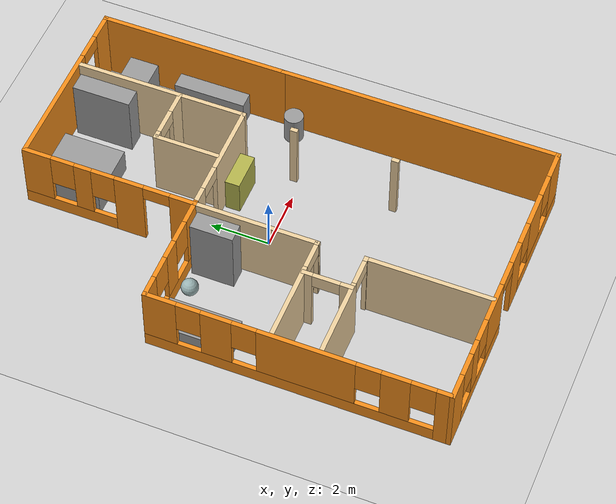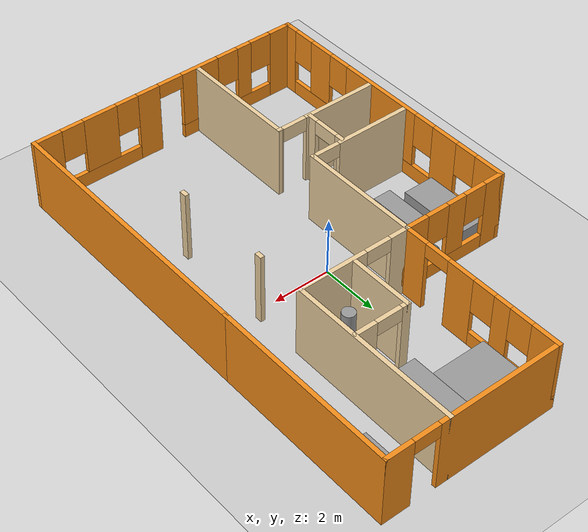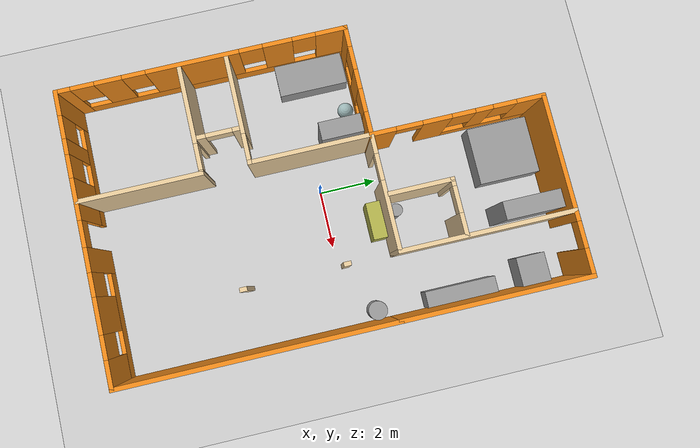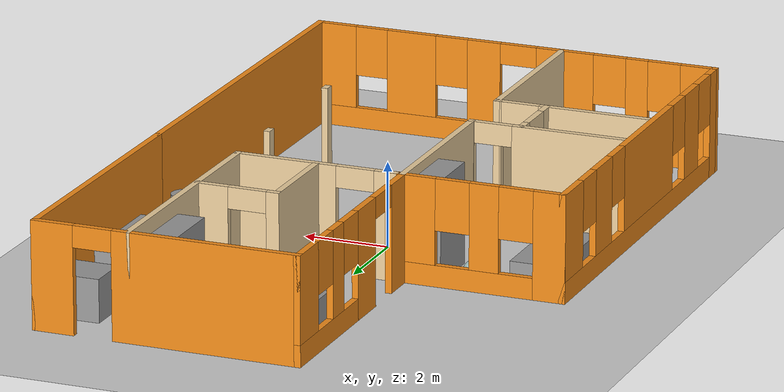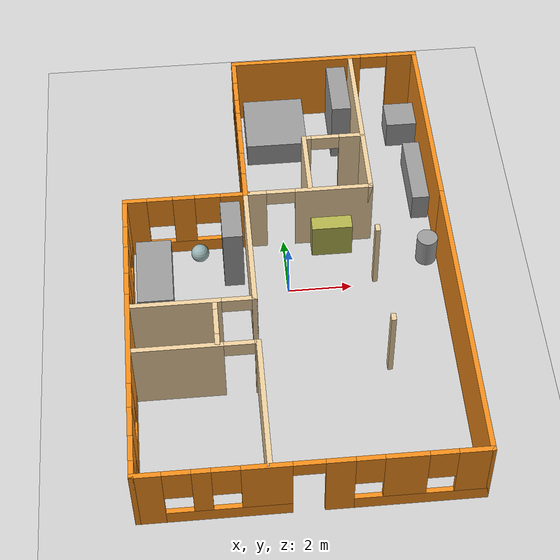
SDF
<sdf version="1.6">
 <world name="default">
  <model name="ground_plane">
   <static>1</static>
   <link name="link">
    <collision name="collision">
     <geometry><plane><normal>0 0 1</normal><size>100 100</size></plane></geometry>
     <surface><friction><ode><mu>100</mu><mu2>50</mu2></ode></friction></surface>
    </collision>
    <visual name="visual">
     <cast_shadows>0</cast_shadows>
     <geometry><plane><normal>0 0 1</normal><size>100 100</size></plane></geometry>
     <material>
      <script><uri>file://media/materials/scripts/gazebo.material</uri><name>Gazebo/Grey</name></script>
     </material>
    </visual>
   </link>
  </model>
  <model name="house">
   <link name="Wall_103">
    <pose>-1.175 4.925 0 0 -0 1.5708</pose>
    <visual name="Wall_103_Visual_0">
     <pose>-2.54292 0 1.25 0 -0 0</pose>
     <geometry><box><size>0.914167 0.15 2.5</size></box></geometry>
     <material>
      <script><uri>file://media/materials/scripts/gazebo.material</uri><name>Gazebo/Orange</name></script>
      <ambient>1 1 1 1</ambient>
     </material>
     <meta><layer>0</layer></meta>
    </visual>
    <collision name="Wall_103_Collision_0">
     <geometry><box><size>0.914167 0.15 2.5</size></box></geometry>
     <pose>-2.54292 0 1.25 0 -0 0</pose>
    </collision>
    <visual name="Wall_103_Visual_1">
     <pose>-0.689609 0 1.25 0 -0 0</pose>
     <geometry><box><size>0.992449 0.15 2.5</size></box></geometry>
     <material>
      <script><uri>file://media/materials/scripts/gazebo.material</uri><name>Gazebo/Orange</name></script>
      <ambient>1 1 1 1</ambient>
     </material>
     <meta><layer>0</layer></meta>
    </visual>
    <collision name="Wall_103_Collision_1">
     <geometry><box><size>0.992449 0.15 2.5</size></box></geometry>
     <pose>-0.689609 0 1.25 0 -0 0</pose>
    </collision>
    <visual name="Wall_103_Visual_2">
     <pose>1.40331 0 0.25 0 -0 0</pose>
     <geometry><box><size>3.19338 0.15 0.5</size></box></geometry>
     <material>
      <script><uri>file://media/materials/scripts/gazebo.material</uri><name>Gazebo/Orange</name></script>
      <ambient>1 1 1 1</ambient>
     </material>
     <meta><layer>0</layer></meta>
    </visual>
    <collision name="Wall_103_Collision_2">
     <geometry><box><size>3.19338 0.15 0.5</size></box></geometry>
     <pose>1.40331 0 0.25 0 -0 0</pose>
    </collision>
    <visual name="Wall_103_Visual_3">
     <pose>0.905775 0 1.5 0 -0 0</pose>
     <geometry><box><size>0.598318 0.15 2</size></box></geometry>
     <material>
      <script><uri>file://media/materials/scripts/gazebo.material</uri><name>Gazebo/Orange</name></script>
      <ambient>1 1 1 1</ambient>
     </material>
     <meta><layer>0</layer></meta>
    </visual>
    <collision name="Wall_103_Collision_3">
     <geometry><box><size>0.598318 0.15 2</size></box></geometry>
     <pose>0.905775 0 1.5 0 -0 0</pose>
    </collision>
    <visual name="Wall_103_Visual_4">
     <pose>2.50247 0 1.5 0 -0 0</pose>
     <geometry><box><size>0.995066 0.15 2</size></box></geometry>
     <material>
      <script><uri>file://media/materials/scripts/gazebo.material</uri><name>Gazebo/Orange</name></script>
      <ambient>1 1 1 1</ambient>
     </material>
     <meta><layer>0</layer></meta>
    </visual>
    <collision name="Wall_103_Collision_4">
     <geometry><box><size>0.995066 0.15 2</size></box></geometry>
     <pose>2.50247 0 1.5 0 -0 0</pose>
    </collision>
    <visual name="Wall_103_Visual_5">
     <pose>0.206616 0 1.9 0 -0 0</pose>
     <geometry><box><size>0.8 0.15 1.2</size></box></geometry>
     <material>
      <script><uri>file://media/materials/scripts/gazebo.material</uri><name>Gazebo/Orange</name></script>
      <ambient>1 1 1 1</ambient>
     </material>
     <meta><layer>0</layer></meta>
    </visual>
    <collision name="Wall_103_Collision_5">
     <geometry><box><size>0.8 0.15 1.2</size></box></geometry>
     <pose>0.206616 0 1.9 0 -0 0</pose>
    </collision>
    <visual name="Wall_103_Visual_6">
     <pose>1.60493 0 1.9 0 -0 0</pose>
     <geometry><box><size>0.8 0.15 1.2</size></box></geometry>
     <material>
      <script><uri>file://media/materials/scripts/gazebo.material</uri><name>Gazebo/Orange</name></script>
      <ambient>1 1 1 1</ambient>
     </material>
     <meta><layer>0</layer></meta>
    </visual>
    <collision name="Wall_103_Collision_6">
     <geometry><box><size>0.8 0.15 1.2</size></box></geometry>
     <pose>1.60493 0 1.9 0 -0 0</pose>
    </collision>
    <visual name="Wall_103_Visual_7">
     <pose>-1.63583 0 2.25 0 -0 0</pose>
     <geometry><box><size>0.9 0.15 0.5</size></box></geometry>
     <material>
      <script><uri>file://media/materials/scripts/gazebo.material</uri><name>Gazebo/Orange</name></script>
      <ambient>1 1 1 1</ambient>
     </material>
     <meta><layer>0</layer></meta>
    </visual>
    <collision name="Wall_103_Collision_7">
     <geometry><box><size>0.9 0.15 0.5</size></box></geometry>
     <pose>-1.63583 0 2.25 0 -0 0</pose>
    </collision>
   </link>
   <link name="Wall_105">
    <pose>-3.02063 2 0 0 -0 0</pose>
    <visual name="Wall_105_Visual_0">
     <pose>-1.60034 0 1.25 0 -0 0</pose>
     <geometry><box><size>0.758079 0.15 2.5</size></box></geometry>
     <material>
      <script><uri>file://media/materials/scripts/gazebo.material</uri><name>Gazebo/Orange</name></script>
      <ambient>1 1 1 1</ambient>
     </material>
     <meta><layer>0</layer></meta>
    </visual>
    <collision name="Wall_105_Collision_0">
     <geometry><box><size>0.758079 0.15 2.5</size></box></geometry>
     <pose>-1.60034 0 1.25 0 -0 0</pose>
    </collision>
    <visual name="Wall_105_Visual_1">
     <pose>0.37904 0 0.25 0 -0 0</pose>
     <geometry><box><size>3.20067 0.15 0.5</size></box></geometry>
     <material>
      <script><uri>file://media/materials/scripts/gazebo.material</uri><name>Gazebo/Orange</name></script>
      <ambient>1 1 1 1</ambient>
     </material>
     <meta><layer>0</layer></meta>
    </visual>
    <collision name="Wall_105_Collision_1">
     <geometry><box><size>3.20067 0.15 0.5</size></box></geometry>
     <pose>0.37904 0 0.25 0 -0 0</pose>
    </collision>
    <visual name="Wall_105_Visual_2">
     <pose>-0.079355 0 1.5 0 -0 0</pose>
     <geometry><box><size>0.683879 0.15 2</size></box></geometry>
     <material>
      <script><uri>file://media/materials/scripts/gazebo.material</uri><name>Gazebo/Orange</name></script>
      <ambient>1 1 1 1</ambient>
     </material>
     <meta><layer>0</layer></meta>
    </visual>
    <collision name="Wall_105_Collision_2">
     <geometry><box><size>0.683879 0.15 2</size></box></geometry>
     <pose>-0.079355 0 1.5 0 -0 0</pose>
    </collision>
    <visual name="Wall_105_Visual_3">
     <pose>1.52098 0 1.5 0 -0 0</pose>
     <geometry><box><size>0.91679 0.15 2</size></box></geometry>
     <material>
      <script><uri>file://media/materials/scripts/gazebo.material</uri><name>Gazebo/Orange</name></script>
      <ambient>1 1 1 1</ambient>
     </material>
     <meta><layer>0</layer></meta>
    </visual>
    <collision name="Wall_105_Collision_3">
     <geometry><box><size>0.91679 0.15 2</size></box></geometry>
     <pose>1.52098 0 1.5 0 -0 0</pose>
    </collision>
    <visual name="Wall_105_Visual_4">
     <pose>-0.821295 0 1.9 0 -0 0</pose>
     <geometry><box><size>0.8 0.15 1.2</size></box></geometry>
     <material>
      <script><uri>file://media/materials/scripts/gazebo.material</uri><name>Gazebo/Orange</name></script>
      <ambient>1 1 1 1</ambient>
     </material>
     <meta><layer>0</layer></meta>
    </visual>
    <collision name="Wall_105_Collision_4">
     <geometry><box><size>0.8 0.15 1.2</size></box></geometry>
     <pose>-0.821295 0 1.9 0 -0 0</pose>
    </collision>
    <visual name="Wall_105_Visual_5">
     <pose>0.662584 0 1.9 0 -0 0</pose>
     <geometry><box><size>0.8 0.15 1.2</size></box></geometry>
     <material>
      <script><uri>file://media/materials/scripts/gazebo.material</uri><name>Gazebo/Orange</name></script>
      <ambient>1 1 1 1</ambient>
     </material>
     <meta><layer>0</layer></meta>
    </visual>
    <collision name="Wall_105_Collision_5">
     <geometry><box><size>0.8 0.15 1.2</size></box></geometry>
     <pose>0.662584 0 1.9 0 -0 0</pose>
    </collision>
   </link>
   <link name="Wall_107">
    <pose>1.875 7.85 0 0 -0 0</pose>
    <visual name="Wall_107_Visual_0">
     <pose>-0.942379 0 1.25 0 -0 0</pose>
     <geometry><box><size>4.36524 0.15 2.5</size></box></geometry>
     <material>
      <script><uri>file://media/materials/scripts/gazebo.material</uri><name>Gazebo/Orange</name></script>
      <ambient>1 1 1 1</ambient>
     </material>
     <meta><layer>0</layer></meta>
    </visual>
    <collision name="Wall_107_Collision_0">
     <geometry><box><size>4.36524 0.15 2.5</size></box></geometry>
     <pose>-0.942379 0 1.25 0 -0 0</pose>
    </collision>
    <visual name="Wall_107_Visual_1">
     <pose>2.63262 0 1.25 0 -0 0</pose>
     <geometry><box><size>0.984758 0.15 2.5</size></box></geometry>
     <material>
      <script><uri>file://media/materials/scripts/gazebo.material</uri><name>Gazebo/Orange</name></script>
      <ambient>1 1 1 1</ambient>
     </material>
     <meta><layer>0</layer></meta>
    </visual>
    <collision name="Wall_107_Collision_1">
     <geometry><box><size>0.984758 0.15 2.5</size></box></geometry>
     <pose>2.63262 0 1.25 0 -0 0</pose>
    </collision>
    <visual name="Wall_107_Visual_2">
     <pose>1.69024 0 2.25 0 -0 0</pose>
     <geometry><box><size>0.9 0.15 0.5</size></box></geometry>
     <material>
      <script><uri>file://media/materials/scripts/gazebo.material</uri><name>Gazebo/Orange</name></script>
      <ambient>1 1 1 1</ambient>
     </material>
     <meta><layer>0</layer></meta>
    </visual>
    <collision name="Wall_107_Collision_2">
     <geometry><box><size>0.9 0.15 0.5</size></box></geometry>
     <pose>1.69024 0 2.25 0 -0 0</pose>
    </collision>
   </link>
   <link name="Wall_116">
    <collision name="Wall_116_Collision">
     <geometry><box><size>6.5 0.15 2.5</size></box></geometry>
     <pose>0 0 1.25 0 -0 0</pose>
    </collision>
    <visual name="Wall_116_Visual">
     <pose>0 0 1.25 0 -0 0</pose>
     <geometry><box><size>6.5 0.15 2.5</size></box></geometry>
     <material>
      <script><uri>file://media/materials/scripts/gazebo.material</uri><name>Gazebo/Orange</name></script>
      <ambient>1 1 1 1</ambient>
     </material>
     <meta><layer>0</layer></meta>
    </visual>
    <pose>4.925 4.675 0 0 0 -1.5708</pose>
   </link>
   <link name="Wall_137">
    <collision name="Wall_137_Collision">
     <geometry><box><size>4.25 0.15 2.5</size></box></geometry>
     <pose>0 0 1.25 0 -0 0</pose>
    </collision>
    <visual name="Wall_137_Visual">
     <pose>0 0 1.25 0 -0 0</pose>
     <geometry><box><size>4.25 0.15 2.5</size></box></geometry>
     <material>
      <script><uri>file://media/materials/scripts/gazebo.material</uri><name>Gazebo/Grey</name></script>
      <ambient>0.921569 0.807843 0.615686 1</ambient>
     </material>
     <meta><layer>0</layer></meta>
    </visual>
    <pose>-1.175 -5.75 0 0 0 -1.5708</pose>
   </link>
   <link name="Wall_139">
    <pose>-2.975 -3.7 0 0 -0 3.14159</pose>
    <visual name="Wall_139_Visual_0">
     <pose>-1.78069 0 1.25 0 -0 0</pose>
     <geometry><box><size>0.188621 0.15 2.5</size></box></geometry>
     <material>
      <script><uri>file://media/materials/scripts/gazebo.material</uri><name>Gazebo/Grey</name></script>
      <ambient>0.921569 0.807843 0.615686 1</ambient>
     </material>
     <meta><layer>0</layer></meta>
    </visual>
    <collision name="Wall_139_Collision_0">
     <geometry><box><size>0.188621 0.15 2.5</size></box></geometry>
     <pose>-1.78069 0 1.25 0 -0 0</pose>
    </collision>
    <visual name="Wall_139_Visual_1">
     <pose>0.54431 0 1.25 0 -0 0</pose>
     <geometry><box><size>2.66138 0.15 2.5</size></box></geometry>
     <material>
      <script><uri>file://media/materials/scripts/gazebo.material</uri><name>Gazebo/Grey</name></script>
      <ambient>0.921569 0.807843 0.615686 1</ambient>
     </material>
     <meta><layer>0</layer></meta>
    </visual>
    <collision name="Wall_139_Collision_1">
     <geometry><box><size>2.66138 0.15 2.5</size></box></geometry>
     <pose>0.54431 0 1.25 0 -0 0</pose>
    </collision>
    <visual name="Wall_139_Visual_2">
     <pose>-1.23638 0 2.25 0 -0 0</pose>
     <geometry><box><size>0.9 0.15 0.5</size></box></geometry>
     <material>
      <script><uri>file://media/materials/scripts/gazebo.material</uri><name>Gazebo/Grey</name></script>
      <ambient>0.921569 0.807843 0.615686 1</ambient>
     </material>
     <meta><layer>0</layer></meta>
    </visual>
    <collision name="Wall_139_Collision_2">
     <geometry><box><size>0.9 0.15 0.5</size></box></geometry>
     <pose>-1.23638 0 2.25 0 -0 0</pose>
    </collision>
   </link>
   <link name="Wall_143">
    <pose>-2.36246 -2.90327 0 0 0 -1.5708</pose>
    <visual name="Wall_143_Visual_0">
     <pose>-0.667997 0 1.25 0 -0 0</pose>
     <geometry><box><size>0.373609 0.15 2.5</size></box></geometry>
     <material>
      <script><uri>file://media/materials/scripts/gazebo.material</uri><name>Gazebo/Grey</name></script>
      <ambient>0.921569 0.807843 0.615686 1</ambient>
     </material>
     <meta><layer>0</layer></meta>
    </visual>
    <collision name="Wall_143_Collision_0">
     <geometry><box><size>0.373609 0.15 2.5</size></box></geometry>
     <pose>-0.667997 0 1.25 0 -0 0</pose>
    </collision>
    <visual name="Wall_143_Visual_1">
     <pose>0.636805 0 1.25 0 -0 0</pose>
     <geometry><box><size>0.435994 0.15 2.5</size></box></geometry>
     <material>
      <script><uri>file://media/materials/scripts/gazebo.material</uri><name>Gazebo/Grey</name></script>
      <ambient>0.921569 0.807843 0.615686 1</ambient>
     </material>
     <meta><layer>0</layer></meta>
    </visual>
    <collision name="Wall_143_Collision_1">
     <geometry><box><size>0.435994 0.15 2.5</size></box></geometry>
     <pose>0.636805 0 1.25 0 -0 0</pose>
    </collision>
    <visual name="Wall_143_Visual_2">
     <pose>-0.031192 0 2.25 0 -0 0</pose>
     <geometry><box><size>0.9 0.15 0.5</size></box></geometry>
     <material>
      <script><uri>file://media/materials/scripts/gazebo.material</uri><name>Gazebo/Grey</name></script>
      <ambient>0.921569 0.807843 0.615686 1</ambient>
     </material>
     <meta><layer>0</layer></meta>
    </visual>
    <collision name="Wall_143_Collision_2">
     <geometry><box><size>0.9 0.15 0.5</size></box></geometry>
     <pose>-0.031192 0 2.25 0 -0 0</pose>
    </collision>
   </link>
   <link name="Wall_149">
    <pose>0.829374 2 0 0 -0 0</pose>
    <visual name="Wall_149_Visual_0">
     <pose>-1.67334 0 1.25 0 -0 0</pose>
     <geometry><box><size>0.653328 0.15 2.5</size></box></geometry>
     <material>
      <script><uri>file://media/materials/scripts/gazebo.material</uri><name>Gazebo/Grey</name></script>
      <ambient>0.921569 0.807843 0.615686 1</ambient>
     </material>
     <meta><layer>0</layer></meta>
    </visual>
    <collision name="Wall_149_Collision_0">
     <geometry><box><size>0.653328 0.15 2.5</size></box></geometry>
     <pose>-1.67334 0 1.25 0 -0 0</pose>
    </collision>
    <visual name="Wall_149_Visual_1">
     <pose>0.776664 0 1.25 0 -0 0</pose>
     <geometry><box><size>2.44667 0.15 2.5</size></box></geometry>
     <material>
      <script><uri>file://media/materials/scripts/gazebo.material</uri><name>Gazebo/Grey</name></script>
      <ambient>0.921569 0.807843 0.615686 1</ambient>
     </material>
     <meta><layer>0</layer></meta>
    </visual>
    <collision name="Wall_149_Collision_1">
     <geometry><box><size>2.44667 0.15 2.5</size></box></geometry>
     <pose>0.776664 0 1.25 0 -0 0</pose>
    </collision>
    <visual name="Wall_149_Visual_2">
     <pose>-0.896672 0 2.25 0 -0 0</pose>
     <geometry><box><size>0.9 0.15 0.5</size></box></geometry>
     <material>
      <script><uri>file://media/materials/scripts/gazebo.material</uri><name>Gazebo/Grey</name></script>
      <ambient>0.921569 0.807843 0.615686 1</ambient>
     </material>
     <meta><layer>0</layer></meta>
    </visual>
    <collision name="Wall_149_Collision_2">
     <geometry><box><size>0.9 0.15 0.5</size></box></geometry>
     <pose>-0.896672 0 2.25 0 -0 0</pose>
    </collision>
   </link>
   <link name="Wall_151">
    <collision name="Wall_151_Collision">
     <geometry><box><size>6 0.15 2.5</size></box></geometry>
     <pose>0 0 1.25 0 -0 0</pose>
    </collision>
    <visual name="Wall_151_Visual">
     <pose>0 0 1.25 0 -0 0</pose>
     <geometry><box><size>6 0.15 2.5</size></box></geometry>
     <material>
      <script><uri>file://media/materials/scripts/gazebo.material</uri><name>Gazebo/Grey</name></script>
      <ambient>0.921569 0.807843 0.615686 1</ambient>
     </material>
     <meta><layer>0</layer></meta>
    </visual>
    <pose>2.75437 4.925 0 0 -0 1.5708</pose>
   </link>
   <link name="Wall_153">
    <collision name="Wall_153_Collision">
     <geometry><box><size>2.25 0.15 2.5</size></box></geometry>
     <pose>0 0 1.25 0 -0 0</pose>
    </collision>
    <visual name="Wall_153_Visual">
     <pose>0 0 1.25 0 -0 0</pose>
     <geometry><box><size>2.25 0.15 2.5</size></box></geometry>
     <material>
      <script><uri>file://media/materials/scripts/gazebo.material</uri><name>Gazebo/Grey</name></script>
      <ambient>0.921569 0.807843 0.615686 1</ambient>
     </material>
     <meta><layer>0</layer></meta>
    </visual>
    <pose>0.863268 3.17275 0 0 -0 1.5708</pose>
   </link>
   <link name="Wall_154">
    <pose>1.78827 4.22275 0 0 -0 0</pose>
    <visual name="Wall_154_Visual_0">
     <pose>-0.847175 0 1.25 0 -0 0</pose>
     <geometry><box><size>0.30565 0.15 2.5</size></box></geometry>
     <material>
      <script><uri>file://media/materials/scripts/gazebo.material</uri><name>Gazebo/Grey</name></script>
      <ambient>0.921569 0.807843 0.615686 1</ambient>
     </material>
     <meta><layer>0</layer></meta>
    </visual>
    <collision name="Wall_154_Collision_0">
     <geometry><box><size>0.30565 0.15 2.5</size></box></geometry>
     <pose>-0.847175 0 1.25 0 -0 0</pose>
    </collision>
    <visual name="Wall_154_Visual_1">
     <pose>0.602825 0 1.25 0 -0 0</pose>
     <geometry><box><size>0.79435 0.15 2.5</size></box></geometry>
     <material>
      <script><uri>file://media/materials/scripts/gazebo.material</uri><name>Gazebo/Grey</name></script>
      <ambient>0.921569 0.807843 0.615686 1</ambient>
     </material>
     <meta><layer>0</layer></meta>
    </visual>
    <collision name="Wall_154_Collision_1">
     <geometry><box><size>0.79435 0.15 2.5</size></box></geometry>
     <pose>0.602825 0 1.25 0 -0 0</pose>
    </collision>
    <visual name="Wall_154_Visual_2">
     <pose>-0.24435 0 2.25 0 -0 0</pose>
     <geometry><box><size>0.9 0.15 0.5</size></box></geometry>
     <material>
      <script><uri>file://media/materials/scripts/gazebo.material</uri><name>Gazebo/Grey</name></script>
      <ambient>0.921569 0.807843 0.615686 1</ambient>
     </material>
     <meta><layer>0</layer></meta>
    </visual>
    <collision name="Wall_154_Collision_2">
     <geometry><box><size>0.9 0.15 0.5</size></box></geometry>
     <pose>-0.24435 0 2.25 0 -0 0</pose>
    </collision>
   </link>
   <link name="Wall_156">
    <collision name="Wall_156_Collision">
     <geometry><box><size>0.25 0.15 2.5</size></box></geometry>
     <pose>0 0 1.25 0 -0 0</pose>
    </collision>
    <visual name="Wall_156_Visual">
     <pose>0 0 1.25 0 -0 0</pose>
     <geometry><box><size>0.25 0.15 2.5</size></box></geometry>
     <material>
      <script><uri>file://media/materials/scripts/gazebo.material</uri><name>Gazebo/Grey</name></script>
      <ambient>0.921569 0.807843 0.615686 1</ambient>
     </material>
     <meta><layer>0</layer></meta>
    </visual>
    <pose>2.76084 0.255188 0 0 0 -1.5708</pose>
   </link>
   <link name="Wall_158">
    <collision name="Wall_158_Collision">
     <geometry><box><size>0.25 0.15 2.5</size></box></geometry>
     <pose>0 0 1.25 0 -0 0</pose>
    </collision>
    <visual name="Wall_158_Visual">
     <pose>0 0 1.25 0 -0 0</pose>
     <geometry><box><size>0.25 0.15 2.5</size></box></geometry>
     <material>
      <script><uri>file://media/materials/scripts/gazebo.material</uri><name>Gazebo/Grey</name></script>
      <ambient>0.921569 0.807843 0.615686 1</ambient>
     </material>
     <meta><layer>0</layer></meta>
    </visual>
    <pose>2.80209 -3.16869 0 0 0 -1.5708</pose>
   </link>
   <link name="Wall_62">
    <pose>0 -7.85 0 0 -0 0</pose>
    <visual name="Wall_62_Visual_0">
     <pose>-4.55783 0 1.25 0 -0 0</pose>
     <geometry><box><size>0.88435 0.15 2.5</size></box></geometry>
     <material>
      <script><uri>file://media/materials/scripts/gazebo.material</uri><name>Gazebo/Orange</name></script>
      <ambient>1 1 1 1</ambient>
     </material>
     <meta><layer>0</layer></meta>
    </visual>
    <collision name="Wall_62_Collision_0">
     <geometry><box><size>0.88435 0.15 2.5</size></box></geometry>
     <pose>-4.55783 0 1.25 0 -0 0</pose>
    </collision>
    <visual name="Wall_62_Visual_1">
     <pose>0.7542 0 1.25 0 -0 0</pose>
     <geometry><box><size>0.820686 0.15 2.5</size></box></geometry>
     <material>
      <script><uri>file://media/materials/scripts/gazebo.material</uri><name>Gazebo/Orange</name></script>
      <ambient>1 1 1 1</ambient>
     </material>
     <meta><layer>0</layer></meta>
    </visual>
    <collision name="Wall_62_Collision_1">
     <geometry><box><size>0.820686 0.15 2.5</size></box></geometry>
     <pose>0.7542 0 1.25 0 -0 0</pose>
    </collision>
    <visual name="Wall_62_Visual_2">
     <pose>-2.3359 0 0.25 0 -0 0</pose>
     <geometry><box><size>3.55951 0.15 0.5</size></box></geometry>
     <material>
      <script><uri>file://media/materials/scripts/gazebo.material</uri><name>Gazebo/Orange</name></script>
      <ambient>1 1 1 1</ambient>
     </material>
     <meta><layer>0</layer></meta>
    </visual>
    <collision name="Wall_62_Collision_2">
     <geometry><box><size>3.55951 0.15 0.5</size></box></geometry>
     <pose>-2.3359 0 0.25 0 -0 0</pose>
    </collision>
    <visual name="Wall_62_Visual_3">
     <pose>3.08227 0 0.25 0 -0 0</pose>
     <geometry><box><size>3.83546 0.15 0.5</size></box></geometry>
     <material>
      <script><uri>file://media/materials/scripts/gazebo.material</uri><name>Gazebo/Orange</name></script>
      <ambient>1 1 1 1</ambient>
     </material>
     <meta><layer>0</layer></meta>
    </visual>
    <collision name="Wall_62_Collision_3">
     <geometry><box><size>3.83546 0.15 0.5</size></box></geometry>
     <pose>3.08227 0 0.25 0 -0 0</pose>
    </collision>
    <visual name="Wall_62_Visual_4">
     <pose>-3.04531 0 1.5 0 -0 0</pose>
     <geometry><box><size>0.540674 0.15 2</size></box></geometry>
     <material>
      <script><uri>file://media/materials/scripts/gazebo.material</uri><name>Gazebo/Orange</name></script>
      <ambient>1 1 1 1</ambient>
     </material>
     <meta><layer>0</layer></meta>
    </visual>
    <collision name="Wall_62_Collision_4">
     <geometry><box><size>0.540674 0.15 2</size></box></geometry>
     <pose>-3.04531 0 1.5 0 -0 0</pose>
    </collision>
    <visual name="Wall_62_Visual_5">
     <pose>-1.26556 0 1.5 0 -0 0</pose>
     <geometry><box><size>1.41883 0.15 2</size></box></geometry>
     <material>
      <script><uri>file://media/materials/scripts/gazebo.material</uri><name>Gazebo/Orange</name></script>
      <ambient>1 1 1 1</ambient>
     </material>
     <meta><layer>0</layer></meta>
    </visual>
    <collision name="Wall_62_Collision_5">
     <geometry><box><size>1.41883 0.15 2</size></box></geometry>
     <pose>-1.26556 0 1.5 0 -0 0</pose>
    </collision>
    <visual name="Wall_62_Visual_6">
     <pose>-1.26556 0 1.5 0 -0 0</pose>
     <geometry><box><size>1.41883 0.15 2</size></box></geometry>
     <material>
      <script><uri>file://media/materials/scripts/gazebo.material</uri><name>Gazebo/Orange</name></script>
      <ambient>1 1 1 1</ambient>
     </material>
     <meta><layer>0</layer></meta>
    </visual>
    <collision name="Wall_62_Collision_6">
     <geometry><box><size>1.41883 0.15 2</size></box></geometry>
     <pose>-1.26556 0 1.5 0 -0 0</pose>
    </collision>
    <visual name="Wall_62_Visual_7">
     <pose>2.57521 0 1.5 0 -0 0</pose>
     <geometry><box><size>1.22132 0.15 2</size></box></geometry>
     <material>
      <script><uri>file://media/materials/scripts/gazebo.material</uri><name>Gazebo/Orange</name></script>
      <ambient>1 1 1 1</ambient>
     </material>
     <meta><layer>0</layer></meta>
    </visual>
    <collision name="Wall_62_Collision_7">
     <geometry><box><size>1.22132 0.15 2</size></box></geometry>
     <pose>2.57521 0 1.5 0 -0 0</pose>
    </collision>
    <visual name="Wall_62_Visual_8">
     <pose>4.49293 0 1.5 0 -0 0</pose>
     <geometry><box><size>1.01413 0.15 2</size></box></geometry>
     <material>
      <script><uri>file://media/materials/scripts/gazebo.material</uri><name>Gazebo/Orange</name></script>
      <ambient>1 1 1 1</ambient>
     </material>
     <meta><layer>0</layer></meta>
    </visual>
    <collision name="Wall_62_Collision_8">
     <geometry><box><size>1.01413 0.15 2</size></box></geometry>
     <pose>4.49293 0 1.5 0 -0 0</pose>
    </collision>
    <visual name="Wall_62_Visual_9">
     <pose>-3.71565 0 1.9 0 -0 0</pose>
     <geometry><box><size>0.8 0.15 1.2</size></box></geometry>
     <material>
      <script><uri>file://media/materials/scripts/gazebo.material</uri><name>Gazebo/Orange</name></script>
      <ambient>1 1 1 1</ambient>
     </material>
     <meta><layer>0</layer></meta>
    </visual>
    <collision name="Wall_62_Collision_9">
     <geometry><box><size>0.8 0.15 1.2</size></box></geometry>
     <pose>-3.71565 0 1.9 0 -0 0</pose>
    </collision>
    <visual name="Wall_62_Visual_10">
     <pose>1.56454 0 1.9 0 -0 0</pose>
     <geometry><box><size>0.8 0.15 1.2</size></box></geometry>
     <material>
      <script><uri>file://media/materials/scripts/gazebo.material</uri><name>Gazebo/Orange</name></script>
      <ambient>1 1 1 1</ambient>
     </material>
     <meta><layer>0</layer></meta>
    </visual>
    <collision name="Wall_62_Collision_10">
     <geometry><box><size>0.8 0.15 1.2</size></box></geometry>
     <pose>1.56454 0 1.9 0 -0 0</pose>
    </collision>
    <visual name="Wall_62_Visual_11">
     <pose>-2.37498 0 1.9 0 -0 0</pose>
     <geometry><box><size>0.8 0.15 1.2</size></box></geometry>
     <material>
      <script><uri>file://media/materials/scripts/gazebo.material</uri><name>Gazebo/Orange</name></script>
      <ambient>1 1 1 1</ambient>
     </material>
     <meta><layer>0</layer></meta>
    </visual>
    <collision name="Wall_62_Collision_11">
     <geometry><box><size>0.8 0.15 1.2</size></box></geometry>
     <pose>-2.37498 0 1.9 0 -0 0</pose>
    </collision>
    <visual name="Wall_62_Visual_12">
     <pose>3.58587 0 1.9 0 -0 0</pose>
     <geometry><box><size>0.8 0.15 1.2</size></box></geometry>
     <material>
      <script><uri>file://media/materials/scripts/gazebo.material</uri><name>Gazebo/Orange</name></script>
      <ambient>1 1 1 1</ambient>
     </material>
     <meta><layer>0</layer></meta>
    </visual>
    <collision name="Wall_62_Collision_12">
     <geometry><box><size>0.8 0.15 1.2</size></box></geometry>
     <pose>3.58587 0 1.9 0 -0 0</pose>
    </collision>
    <visual name="Wall_62_Visual_13">
     <pose>-0.106143 0 2.25 0 -0 0</pose>
     <geometry><box><size>0.9 0.15 0.5</size></box></geometry>
     <material>
      <script><uri>file://media/materials/scripts/gazebo.material</uri><name>Gazebo/Orange</name></script>
      <ambient>1 1 1 1</ambient>
     </material>
     <meta><layer>0</layer></meta>
    </visual>
    <collision name="Wall_62_Collision_13">
     <geometry><box><size>0.9 0.15 0.5</size></box></geometry>
     <pose>-0.106143 0 2.25 0 -0 0</pose>
    </collision>
    <visual name="Wall_62_Visual_14">
     <pose>-0.106143 0 2.25 0 -0 0</pose>
     <geometry><box><size>0.9 0.15 0.5</size></box></geometry>
     <material>
      <script><uri>file://media/materials/scripts/gazebo.material</uri><name>Gazebo/Orange</name></script>
      <ambient>1 1 1 1</ambient>
     </material>
     <meta><layer>0</layer></meta>
    </visual>
    <collision name="Wall_62_Collision_14">
     <geometry><box><size>0.9 0.15 0.5</size></box></geometry>
     <pose>-0.106143 0 2.25 0 -0 0</pose>
    </collision>
   </link>
   <link name="Wall_64">
    <pose>-4.925 -2.925 0 0 -0 1.5708</pose>
    <visual name="Wall_64_Visual_0">
     <pose>-4.71504 0 1.25 0 -0 0</pose>
     <geometry><box><size>0.569922 0.15 2.5</size></box></geometry>
     <material>
      <script><uri>file://media/materials/scripts/gazebo.material</uri><name>Gazebo/Orange</name></script>
      <ambient>1 1 1 1</ambient>
     </material>
     <meta><layer>0</layer></meta>
    </visual>
    <collision name="Wall_64_Collision_0">
     <geometry><box><size>0.569922 0.15 2.5</size></box></geometry>
     <pose>-4.71504 0 1.25 0 -0 0</pose>
    </collision>
    <visual name="Wall_64_Visual_1">
     <pose>0.284961 0 0.25 0 -0 0</pose>
     <geometry><box><size>9.43008 0.15 0.5</size></box></geometry>
     <material>
      <script><uri>file://media/materials/scripts/gazebo.material</uri><name>Gazebo/Orange</name></script>
      <ambient>1 1 1 1</ambient>
     </material>
     <meta><layer>0</layer></meta>
    </visual>
    <collision name="Wall_64_Collision_1">
     <geometry><box><size>9.43008 0.15 0.5</size></box></geometry>
     <pose>0.284961 0 0.25 0 -0 0</pose>
    </collision>
    <visual name="Wall_64_Visual_2">
     <pose>-3.1638 0 1.5 0 -0 0</pose>
     <geometry><box><size>0.932564 0.15 2</size></box></geometry>
     <material>
      <script><uri>file://media/materials/scripts/gazebo.material</uri><name>Gazebo/Orange</name></script>
      <ambient>1 1 1 1</ambient>
     </material>
     <meta><layer>0</layer></meta>
    </visual>
    <collision name="Wall_64_Collision_2">
     <geometry><box><size>0.932564 0.15 2</size></box></geometry>
     <pose>-3.1638 0 1.5 0 -0 0</pose>
    </collision>
    <visual name="Wall_64_Visual_3">
     <pose>-0.307129 0 1.5 0 -0 0</pose>
     <geometry><box><size>3.18077 0.15 2</size></box></geometry>
     <material>
      <script><uri>file://media/materials/scripts/gazebo.material</uri><name>Gazebo/Orange</name></script>
      <ambient>1 1 1 1</ambient>
     </material>
     <meta><layer>0</layer></meta>
    </visual>
    <collision name="Wall_64_Collision_3">
     <geometry><box><size>3.18077 0.15 2</size></box></geometry>
     <pose>-0.307129 0 1.5 0 -0 0</pose>
    </collision>
    <visual name="Wall_64_Visual_4">
     <pose>2.59079 0 1.5 0 -0 0</pose>
     <geometry><box><size>1.01507 0.15 2</size></box></geometry>
     <material>
      <script><uri>file://media/materials/scripts/gazebo.material</uri><name>Gazebo/Orange</name></script>
      <ambient>1 1 1 1</ambient>
     </material>
     <meta><layer>0</layer></meta>
    </visual>
    <collision name="Wall_64_Collision_4">
     <geometry><box><size>1.01507 0.15 2</size></box></geometry>
     <pose>2.59079 0 1.5 0 -0 0</pose>
    </collision>
    <visual name="Wall_64_Visual_5">
     <pose>4.44916 0 1.5 0 -0 0</pose>
     <geometry><box><size>1.10168 0.15 2</size></box></geometry>
     <material>
      <script><uri>file://media/materials/scripts/gazebo.material</uri><name>Gazebo/Orange</name></script>
      <ambient>1 1 1 1</ambient>
     </material>
     <meta><layer>0</layer></meta>
    </visual>
    <collision name="Wall_64_Collision_5">
     <geometry><box><size>1.10168 0.15 2</size></box></geometry>
     <pose>4.44916 0 1.5 0 -0 0</pose>
    </collision>
    <visual name="Wall_64_Visual_6">
     <pose>-4.03008 0 1.9 0 -0 0</pose>
     <geometry><box><size>0.8 0.15 1.2</size></box></geometry>
     <material>
      <script><uri>file://media/materials/scripts/gazebo.material</uri><name>Gazebo/Orange</name></script>
      <ambient>1 1 1 1</ambient>
     </material>
     <meta><layer>0</layer></meta>
    </visual>
    <collision name="Wall_64_Collision_6">
     <geometry><box><size>0.8 0.15 1.2</size></box></geometry>
     <pose>-4.03008 0 1.9 0 -0 0</pose>
    </collision>
    <visual name="Wall_64_Visual_7">
     <pose>-2.29751 0 1.9 0 -0 0</pose>
     <geometry><box><size>0.8 0.15 1.2</size></box></geometry>
     <material>
      <script><uri>file://media/materials/scripts/gazebo.material</uri><name>Gazebo/Orange</name></script>
      <ambient>1 1 1 1</ambient>
     </material>
     <meta><layer>0</layer></meta>
    </visual>
    <collision name="Wall_64_Collision_7">
     <geometry><box><size>0.8 0.15 1.2</size></box></geometry>
     <pose>-2.29751 0 1.9 0 -0 0</pose>
    </collision>
    <visual name="Wall_64_Visual_8">
     <pose>1.68326 0 1.9 0 -0 0</pose>
     <geometry><box><size>0.8 0.15 1.2</size></box></geometry>
     <material>
      <script><uri>file://media/materials/scripts/gazebo.material</uri><name>Gazebo/Orange</name></script>
      <ambient>1 1 1 1</ambient>
     </material>
     <meta><layer>0</layer></meta>
    </visual>
    <collision name="Wall_64_Collision_8">
     <geometry><box><size>0.8 0.15 1.2</size></box></geometry>
     <pose>1.68326 0 1.9 0 -0 0</pose>
    </collision>
    <visual name="Wall_64_Visual_9">
     <pose>3.49832 0 1.9 0 -0 0</pose>
     <geometry><box><size>0.8 0.15 1.2</size></box></geometry>
     <material>
      <script><uri>file://media/materials/scripts/gazebo.material</uri><name>Gazebo/Orange</name></script>
      <ambient>1 1 1 1</ambient>
     </material>
     <meta><layer>0</layer></meta>
    </visual>
    <collision name="Wall_64_Collision_9">
     <geometry><box><size>0.8 0.15 1.2</size></box></geometry>
     <pose>3.49832 0 1.9 0 -0 0</pose>
    </collision>
   </link>
   <link name="Wall_66">
    <collision name="Wall_66_Collision">
     <geometry><box><size>9.5 0.15 2.5</size></box></geometry>
     <pose>0 0 1.25 0 -0 0</pose>
    </collision>
    <visual name="Wall_66_Visual">
     <pose>0 0 1.25 0 -0 0</pose>
     <geometry><box><size>9.5 0.15 2.5</size></box></geometry>
     <material>
      <script><uri>file://media/materials/scripts/gazebo.material</uri><name>Gazebo/Orange</name></script>
      <ambient>1 1 1 1</ambient>
     </material>
     <meta><layer>0</layer></meta>
    </visual>
    <pose>4.925 -3.175 0 0 0 -1.5708</pose>
   </link>
   <link name="Wall_91">
    <pose>-2.975 -2.1 0 0 -0 0</pose>
    <visual name="Wall_91_Visual_0">
     <pose>-0.53002 0 1.25 0 -0 0</pose>
     <geometry><box><size>2.68996 0.15 2.5</size></box></geometry>
     <material>
      <script><uri>file://media/materials/scripts/gazebo.material</uri><name>Gazebo/Grey</name></script>
      <ambient>0.921569 0.807843 0.615686 1</ambient>
     </material>
     <meta><layer>0</layer></meta>
    </visual>
    <collision name="Wall_91_Collision_0">
     <geometry><box><size>2.68996 0.15 2.5</size></box></geometry>
     <pose>-0.53002 0 1.25 0 -0 0</pose>
    </collision>
    <visual name="Wall_91_Visual_1">
     <pose>1.79498 0 1.25 0 -0 0</pose>
     <geometry><box><size>0.16004 0.15 2.5</size></box></geometry>
     <material>
      <script><uri>file://media/materials/scripts/gazebo.material</uri><name>Gazebo/Grey</name></script>
      <ambient>0.921569 0.807843 0.615686 1</ambient>
     </material>
     <meta><layer>0</layer></meta>
    </visual>
    <collision name="Wall_91_Collision_1">
     <geometry><box><size>0.16004 0.15 2.5</size></box></geometry>
     <pose>1.79498 0 1.25 0 -0 0</pose>
    </collision>
    <visual name="Wall_91_Visual_2">
     <pose>1.26496 0 2.25 0 -0 0</pose>
     <geometry><box><size>0.9 0.15 0.5</size></box></geometry>
     <material>
      <script><uri>file://media/materials/scripts/gazebo.material</uri><name>Gazebo/Grey</name></script>
      <ambient>0.921569 0.807843 0.615686 1</ambient>
     </material>
     <meta><layer>0</layer></meta>
    </visual>
    <collision name="Wall_91_Collision_2">
     <geometry><box><size>0.9 0.15 0.5</size></box></geometry>
     <pose>1.26496 0 2.25 0 -0 0</pose>
    </collision>
   </link>
   <link name="Wall_92">
    <collision name="Wall_92_Collision">
     <geometry><box><size>4.25 0.15 2.5</size></box></geometry>
     <pose>0 0 1.25 0 -0 0</pose>
    </collision>
    <visual name="Wall_92_Visual">
     <pose>0 0 1.25 0 -0 0</pose>
     <geometry><box><size>4.25 0.15 2.5</size></box></geometry>
     <material>
      <script><uri>file://media/materials/scripts/gazebo.material</uri><name>Gazebo/Grey</name></script>
      <ambient>0.921569 0.807843 0.615686 1</ambient>
     </material>
     <meta><layer>0</layer></meta>
    </visual>
    <pose>-1.175 -0.05 0 0 -0 1.5708</pose>
   </link>
   <static>1</static>
  </model>
  <model name="unit_box_0">
   <pose>0.089072 6.57553 0.447806 0 1.8e-05 -0.000342</pose>
   <link name="link">
    <inertial>
     <mass>1</mass>
     <inertia>
      <ixx>0.166667</ixx>
      <ixy>0</ixy>
      <ixz>0</ixz>
      <iyy>0.166667</iyy>
      <iyz>0</iyz>
      <izz>0.166667</izz>
     </inertia>
    </inertial>
    <collision name="collision"><geometry><box><size>1.99997 2.12106 0.895648</size></box></geometry></collision>
    <visual name="visual">
     <geometry><box><size>1.99997 2.12106 0.895648</size></box></geometry>
     <material>
      <script><name>Gazebo/Grey</name><uri>file://media/materials/scripts/gazebo.material</uri></script>
     </material>
    </visual>
   </link>
  </model>
  <model name="unit_box_1">
   <pose>-4.17432 0.605108 0.368271 0 9e-06 -0.000545</pose>
   <link name="link">
    <inertial>
     <mass>1</mass>
     <inertia>
      <ixx>0.166667</ixx>
      <ixy>0</ixy>
      <ixz>0</ixz>
      <iyy>0.166667</iyy>
      <iyz>0</iyz>
      <izz>0.166667</izz>
     </inertia>
    </inertial>
    <collision name="collision"><geometry><box><size>1.12139 2.41872 0.736552</size></box></geometry></collision>
    <visual name="visual">
     <geometry><box><size>1.12139 2.41872 0.736552</size></box></geometry>
     <material>
      <script><name>Gazebo/Grey</name><uri>file://media/materials/scripts/gazebo.material</uri></script>
     </material>
    </visual>
   </link>
  </model>
  <model name="unit_box_2">
   <pose>-1.67767 1.1015 1.18566 3e-06 0 3.6e-05</pose>
   <link name="link">
    <inertial>
     <mass>1</mass>
     <inertia>
      <ixx>0.166667</ixx>
      <ixy>0</ixy>
      <ixz>0</ixz>
      <iyy>0.166667</iyy>
      <iyz>0</iyz>
      <izz>0.166667</izz>
     </inertia>
    </inertial>
    <collision name="collision"><geometry><box><size>0.622955 1.43882 2.37133</size></box></geometry></collision>
    <visual name="visual">
     <geometry><box><size>0.622955 1.43882 2.37133</size></box></geometry>
     <material>
      <script><name>Gazebo/Grey</name><uri>file://media/materials/scripts/gazebo.material</uri></script>
     </material>
    </visual>
   </link>
  </model>
  <model name="unit_box_6">
   <pose>4.34995 6.49352 0.499995 1e-05 0 6.7e-05</pose>
   <link name="link">
    <inertial>
     <mass>1</mass>
     <inertia>
      <ixx>0.166667</ixx>
      <ixy>0</ixy>
      <ixz>0</ixz>
      <iyy>0.166667</iyy>
      <iyz>0</iyz>
      <izz>0.166667</izz>
     </inertia>
    </inertial>
    <collision name="collision"><geometry><box><size>0.999998 1 1</size></box></geometry></collision>
    <visual name="visual">
     <geometry><box><size>0.999998 1 1</size></box></geometry>
     <material>
      <script><name>Gazebo/Grey</name><uri>file://media/materials/scripts/gazebo.material</uri></script>
     </material>
    </visual>
   </link>
  </model>
  <model name="unit_box_6_clone_0">
   <pose>4.53663 3.90315 0.499942 -4.7e-05 -0 0.000156</pose>
   <link name="link">
    <inertial>
     <mass>1</mass>
     <inertia>
      <ixx>0.166667</ixx>
      <ixy>0</ixy>
      <ixz>0</ixz>
      <iyy>0.166667</iyy>
      <iyz>0</iyz>
      <izz>0.166667</izz>
     </inertia>
    </inertial>
    <collision name="collision"><geometry><box><size>0.550151 2.46563 1</size></box></geometry></collision>
    <visual name="visual">
     <geometry><box><size>0.550151 2.46563 1</size></box></geometry>
     <material>
      <script><name>Gazebo/Grey</name><uri>file://media/materials/scripts/gazebo.material</uri></script>
     </material>
    </visual>
   </link>
  </model>
  <model name="unit_sphere1">
   <link name="link">
    <inertial>
     <mass>1</mass>
     <inertia><ixx>0.1</ixx><ixy>0</ixy><ixz>0</ixz><iyy>0.1</iyy><iyz>0</iyz><izz>0.1</izz></inertia>
    </inertial>
    <visual name="visual">
     <geometry><sphere><radius>0.284539</radius></sphere></geometry>
     <material>
      <script><name>Gazebo/Grey</name><uri>file://media/materials/scripts/gazebo.material</uri></script>
      <shader type="pixel"><normal_map>__default__</normal_map></shader>
      <ambient>1 0 1 1</ambient>
      <diffuse>0.6 0.7 0.7 1</diffuse>
      <specular>0.01 0.01 0.01 1</specular>
      <emissive>0 0 0 1</emissive>
     </material>
    </visual>
    <collision name="collision">
     <geometry><sphere><radius>0.284539</radius></sphere></geometry>
     <surface>
      <friction>
       <ode><mu>1</mu><mu2>1</mu2><fdir1>0 0 0</fdir1><slip1>0</slip1><slip2>0</slip2></ode>
       <torsional>
        <coefficient>1</coefficient>
        <patch_radius>0</patch_radius>
        <surface_radius>0</surface_radius>
        <use_patch_radius>1</use_patch_radius>
        <ode><slip>0</slip></ode>
       </torsional>
      </friction>
      <bounce><restitution_coefficient>0</restitution_coefficient><threshold>1e+06</threshold></bounce>
      <contact>
       <collide_without_contact>0</collide_without_contact>
       <collide_without_contact_bitmask>1</collide_without_contact_bitmask>
       <collide_bitmask>1</collide_bitmask>
       <ode>
        <soft_cfm>0</soft_cfm>
        <soft_erp>0.2</soft_erp>
        <kp>1e+13</kp>
        <kd>1</kd>
        <max_vel>0.01</max_vel>
        <min_depth>0</min_depth>
       </ode>
       <bullet>
        <split_impulse>1</split_impulse>
        <split_impulse_penetration_threshold>-0.01</split_impulse_penetration_threshold>
        <soft_cfm>0</soft_cfm>
        <soft_erp>0.2</soft_erp>
        <kp>1e+13</kp>
        <kd>1</kd>
       </bullet>
      </contact>
     </surface>
    </collision>
   </link>
   <static>0</static>
   <pose>-2.70968 1.56662 0.284539 0 -0 0</pose>
  </model>
  <model name="unit_cylinder_0">
   <link name="link">
    <inertial>
     <mass>1</mass>
     <inertia><ixx>0.145833</ixx><ixy>0</ixy><ixz>0</ixz><iyy>0.145833</iyy><iyz>0</iyz><izz>0.125</izz></inertia>
    </inertial>
    <visual name="visual">
     <geometry><cylinder><radius>0.222431</radius><length>1</length></cylinder></geometry>
     <material>
      <script><name>Gazebo/Grey</name><uri>file://media/materials/scripts/gazebo.material</uri></script>
      <shader type="pixel"><normal_map>__default__</normal_map></shader>
      <ambient>1 1 1 1</ambient>
      <diffuse>0.7 0.7 0.7 1</diffuse>
      <specular>0.01 0.01 0.01 1</specular>
      <emissive>0 0 0 1</emissive>
     </material>
    </visual>
    <collision name="collision">
     <geometry><cylinder><radius>0.222431</radius><length>1</length></cylinder></geometry>
     <surface>
      <friction>
       <ode><mu>1</mu><mu2>1</mu2><fdir1>0 0 0</fdir1><slip1>0</slip1><slip2>0</slip2></ode>
       <torsional>
        <coefficient>1</coefficient>
        <patch_radius>0</patch_radius>
        <surface_radius>0</surface_radius>
        <use_patch_radius>1</use_patch_radius>
        <ode><slip>0</slip></ode>
       </torsional>
      </friction>
      <bounce><restitution_coefficient>0</restitution_coefficient><threshold>1e+06</threshold></bounce>
      <contact>
       <collide_without_contact>0</collide_without_contact>
       <collide_without_contact_bitmask>1</collide_without_contact_bitmask>
       <collide_bitmask>1</collide_bitmask>
       <ode>
        <soft_cfm>0</soft_cfm>
        <soft_erp>0.2</soft_erp>
        <kp>1e+13</kp>
        <kd>1</kd>
        <max_vel>0.01</max_vel>
        <min_depth>0</min_depth>
       </ode>
       <bullet>
        <split_impulse>1</split_impulse>
        <split_impulse_penetration_threshold>-0.01</split_impulse_penetration_threshold>
        <soft_cfm>0</soft_cfm>
        <soft_erp>0.2</soft_erp>
        <kp>1e+13</kp>
        <kd>1</kd>
       </bullet>
      </contact>
     </surface>
    </collision>
   </link>
   <static>0</static>
   <pose>1.29953 2.40009 0.499998 -1e-06 0 2e-05</pose>
  </model>
  <model name="unit_box">
   <link name="link">
    <inertial>
     <mass>1</mass>
     <inertia>
      <ixx>0.166667</ixx>
      <ixy>0</ixy>
      <ixz>0</ixz>
      <iyy>0.166667</iyy>
      <iyz>0</iyz>
      <izz>0.166667</izz>
     </inertia>
    </inertial>
    <visual name="visual">
     <geometry><box><size>1.28041 0.498149 1.27967</size></box></geometry>
     <material>
      <script><name>Gazebo/Grey</name><uri>file://media/materials/scripts/gazebo.material</uri></script>
      <shader type="pixel"><normal_map>__default__</normal_map></shader>
      <ambient>0.7 0.7 0.3 1</ambient>
      <diffuse>0.7 0.7 0.7 1</diffuse>
      <specular>0.01 0.01 0.01 1</specular>
      <emissive>0 0 0 1</emissive>
     </material>
    </visual>
    <collision name="collision">
     <geometry><box><size>1.28041 0.498149 1.27967</size></box></geometry>
     <surface>
      <friction>
       <ode><mu>1</mu><mu2>1</mu2><fdir1>0 0 0</fdir1><slip1>0</slip1><slip2>0</slip2></ode>
       <torsional>
        <coefficient>1</coefficient>
        <patch_radius>0</patch_radius>
        <surface_radius>0</surface_radius>
        <use_patch_radius>1</use_patch_radius>
        <ode><slip>0</slip></ode>
       </torsional>
      </friction>
      <bounce><restitution_coefficient>0</restitution_coefficient><threshold>1e+06</threshold></bounce>
      <contact>
       <collide_without_contact>0</collide_without_contact>
       <collide_without_contact_bitmask>1</collide_without_contact_bitmask>
       <collide_bitmask>1</collide_bitmask>
       <ode>
        <soft_cfm>0</soft_cfm>
        <soft_erp>0.2</soft_erp>
        <kp>1e+13</kp>
        <kd>1</kd>
        <max_vel>0.01</max_vel>
        <min_depth>0</min_depth>
       </ode>
       <bullet>
        <split_impulse>1</split_impulse>
        <split_impulse_penetration_threshold>-0.01</split_impulse_penetration_threshold>
        <soft_cfm>0</soft_cfm>
        <soft_erp>0.2</soft_erp>
        <kp>1e+13</kp>
        <kd>1</kd>
       </bullet>
      </contact>
     </surface>
    </collision>
   </link>
   <static>0</static>
   <pose>1.51317 1.6273 0.639835 0 0 -2e-05</pose>
  </model>
  <model name="unit_box_3">
   <link name="link">
    <inertial>
     <mass>1</mass>
     <inertia>
      <ixx>0.166667</ixx>
      <ixy>0</ixy>
      <ixz>0</ixz>
      <iyy>0.166667</iyy>
      <iyz>0</iyz>
      <izz>0.166667</izz>
     </inertia>
    </inertial>
    <visual name="visual">
     <geometry><box><size>0.625208 1.99157 2.24067</size></box></geometry>
     <material>
      <script><name>Gazebo/Grey</name><uri>file://media/materials/scripts/gazebo.material</uri></script>
      <shader type="pixel"><normal_map>__default__</normal_map></shader>
      <ambient>0.8 0.8 0.8 1</ambient>
      <diffuse>0.7 0.7 0.7 1</diffuse>
      <specular>0.01 0.01 0.01 1</specular>
      <emissive>0 0 0 1</emissive>
     </material>
    </visual>
    <collision name="collision">
     <geometry><box><size>0.625208 1.99157 2.24067</size></box></geometry>
     <surface>
      <friction>
       <ode><mu>1</mu><mu2>1</mu2><fdir1>0 0 0</fdir1><slip1>0</slip1><slip2>0</slip2></ode>
       <torsional>
        <coefficient>1</coefficient>
        <patch_radius>0</patch_radius>
        <surface_radius>0</surface_radius>
        <use_patch_radius>1</use_patch_radius>
        <ode><slip>0</slip></ode>
       </torsional>
      </friction>
      <bounce><restitution_coefficient>0</restitution_coefficient><threshold>1e+06</threshold></bounce>
      <contact>
       <collide_without_contact>0</collide_without_contact>
       <collide_without_contact_bitmask>1</collide_without_contact_bitmask>
       <collide_bitmask>1</collide_bitmask>
       <ode>
        <soft_cfm>0</soft_cfm>
        <soft_erp>0.2</soft_erp>
        <kp>1e+13</kp>
        <kd>1</kd>
        <max_vel>0.01</max_vel>
        <min_depth>0</min_depth>
       </ode>
       <bullet>
        <split_impulse>1</split_impulse>
        <split_impulse_penetration_threshold>-0.01</split_impulse_penetration_threshold>
        <soft_cfm>0</soft_cfm>
        <soft_erp>0.2</soft_erp>
        <kp>1e+13</kp>
        <kd>1</kd>
       </bullet>
      </contact>
     </surface>
    </collision>
   </link>
   <static>0</static>
   <pose>2.24549 6.67028 1.12033 -5e-06 1e-06 0.000142</pose>
  </model>
  <model name="unit_cylinder">
   <pose>4.50265 0.973222 0.499998 0 -0 0</pose>
   <link name="link">
    <inertial>
     <mass>1</mass>
     <inertia><ixx>0.145833</ixx><ixy>0</ixy><ixz>0</ixz><iyy>0.145833</iyy><iyz>0</iyz><izz>0.125</izz></inertia>
    </inertial>
    <collision name="collision">
     <geometry><cylinder><radius>0.32593</radius><length>1</length></cylinder></geometry>
    </collision>
    <visual name="visual">
     <geometry><cylinder><radius>0.32593</radius><length>1</length></cylinder></geometry>
     <material>
      <script><name>Gazebo/Grey</name><uri>file://media/materials/scripts/gazebo.material</uri></script>
     </material>
    </visual>
   </link>
  </model>
 </world>
</sdf>
